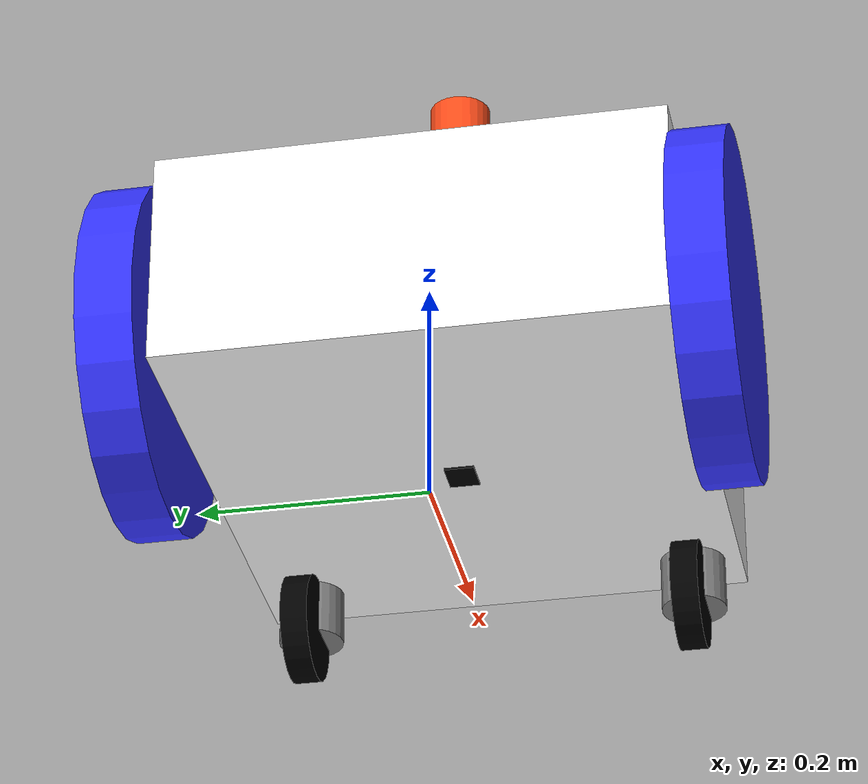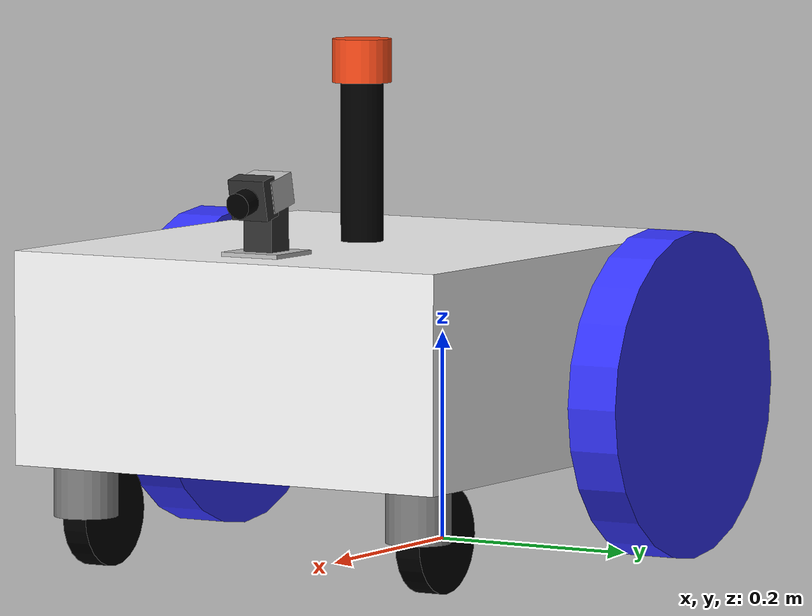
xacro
<?xml version="1.0"?>
<robot xmlns:xacro="http://www.ros.org/wiki/xacro" name="robot">

    <xacro:include filename="robot_core.xacro" />
    <xacro:include filename="gazebo_control.xacro" />
    <xacro:include filename="lidar.xacro" />
    <xacro:include filename="imu.xacro" />
    <xacro:include filename="camera.xacro" />
</robot>

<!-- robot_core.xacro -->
<robot xmlns:xacro="http://www.ros.org/wiki/xacro">

    <xacro:include filename="inertial_macros.xacro"/>

    <!-- COLOR DEFINITIONS -->
    <material name="white">
        <color rgba="1 1 1 1" />
    </material>

    <material name="orange">
        <color rgba="1 0.3 0.1 1"/>
    </material>

    <material name="blue">
        <color rgba="0.2 0.2 1 1"/>
    </material>

    <material name="black">
        <color rgba="0 0 0 1"/>
    </material>

    <material name="grey">
        <color rgba="0.5 0.5 0.5 1"/>
    </material>

    <!-- BASE LINK (Tam truc 2 banh chu dong tren mat dat) -->
    <link name="base_link">
    </link>

    <!-- BASE FOOTPRINT -->
    <joint name="base_footprint_joint" type="fixed">
        <parent link="base_link"/>
        <child link="base_footprint"/>
        <origin xyz="0 0 0" rpy="0 0 0"/>
    </joint>

    <link name="base_footprint">
    </link>

    <!-- CHASSIS LINK (Gam cach dat 0.1m, Than xe Cao 0.2m -> Tam o Z = 0.2m) -->
    <joint name="chassis_joint" type="fixed">
        <parent link="base_link"/>
        <child link="chassis"/>
        <origin xyz="-0.1 0 0"/>
    </joint>

    <link name="chassis">
        <visual>
            <origin xyz="0.25 0 0.2"/>
            <geometry>
                <box size="0.5 0.45 0.2"/>
            </geometry>
            <material name="white"/>
        </visual>
        <collision>
            <origin xyz="0.25 0 0.2"/>
            <geometry>
                <box size="0.5 0.45 0.2"/>
            </geometry>
        </collision>
        <xacro:inertial_box mass="10.0" x="0.5" y="0.45" z="0.2">
            <origin xyz="0.25 0 0.2" rpy="0 0 0"/>
        </xacro:inertial_box>
    </link>

    <gazebo reference="chassis">
        <material>Gazebo/White</material>
    </gazebo>

    <!-- LEFT WHEEL LINK (Ban kinh 0.155m, Do day 0.05m) -->
    <joint name="left_wheel_joint" type="continuous">
        <parent link="base_link"/>
        <child link="left_wheel"/>
        <origin xyz="0 0.25 0.155" rpy="-${pi/2} 0 0" />
        <axis xyz="0 0 1"/>
    </joint>

    <link name="left_wheel">
        <visual>
            <geometry>
                <cylinder radius="0.155" length="0.05"/>
            </geometry>
            <material name="blue"/>
        </visual>
        <collision>
            <geometry>
                <cylinder radius="0.155" length="0.05"/>
            </geometry>
        </collision>
        <xacro:inertial_cylinder mass="1.5" length="0.05" radius="0.155">
            <origin xyz="0 0 0" rpy="0 0 0"/>
        </xacro:inertial_cylinder>
    </link>

    <gazebo reference="left_wheel">
        <material>Gazebo/Blue</material>
    </gazebo>

    <!-- RIGHT WHEEL LINK (Ban kinh 0.155m, Do day 0.05m) -->
    <joint name="right_wheel_joint" type="continuous">
        <parent link="base_link"/>
        <child link="right_wheel"/>
        <origin xyz="0 -0.25 0.155" rpy="${pi/2} 0 0" />
        <axis xyz="0 0 -1"/>
    </joint>

    <link name="right_wheel">
        <visual>
            <geometry>
                <cylinder radius="0.155" length="0.05"/>
            </geometry>
            <material name="blue"/>
        </visual>
        <collision>
            <geometry>
                <cylinder radius="0.155" length="0.05"/>
            </geometry>
        </collision>
        <xacro:inertial_cylinder mass="1.5" length="0.05" radius="0.155">
            <origin xyz="0 0 0" rpy="0 0 0"/>
        </xacro:inertial_cylinder>
    </link>

    <gazebo reference="right_wheel">
        <material>Gazebo/Blue</material>
    </gazebo>

    <!-- ==================== FRONT LEFT SWIVEL CASTER ==================== -->
    <!-- Khop xoay co banh quanh truc Z -->
    <joint name="fl_caster_swivel_joint" type="fixed">
        <parent link="chassis"/>
        <child link="fl_caster_swivel"/>
        <origin xyz="0.45 0.18 0.1" rpy="0 0 0"/>
        <axis xyz="0 0 1"/>
    </joint>

    <link name="fl_caster_swivel">
        <visual>
            <origin xyz="0 0 -0.025" rpy="0 0 0"/>
            <geometry>
                <cylinder radius="0.03" length="0.05"/>
            </geometry>
            <material name="grey"/>
        </visual>
        <collision>
            <origin xyz="0 0 -0.025" rpy="0 0 0"/>
            <geometry>
                <cylinder radius="0.03" length="0.05"/>
            </geometry>
        </collision>
        <xacro:inertial_cylinder mass="0.2" length="0.05" radius="0.03">
            <origin xyz="0 0 -0.025" rpy="0 0 0"/>
        </xacro:inertial_cylinder>
    </link>

    <!-- Khop quay banh xe lan quanh truc Y -->
    <joint name="fl_caster_wheel_joint" type="fixed">
        <parent link="fl_caster_swivel"/>
        <child link="fl_caster_wheel"/>
        <origin xyz="-0.03 0 -0.05" rpy="-${pi/2} 0 0"/>
        <axis xyz="0 0 1"/>
    </joint>

    <link name="fl_caster_wheel">
        <visual>
            <origin xyz="0 0 0" rpy="0 0 0"/>
            <geometry>
                <cylinder radius="0.05" length="0.025"/>
            </geometry>
            <material name="black"/>
        </visual>
        <collision>
            <origin xyz="0 0 0" rpy="0 0 0"/>
            <geometry>
                <cylinder radius="0.05" length="0.025"/>
            </geometry>
        </collision>
        <xacro:inertial_cylinder mass="0.3" length="0.025" radius="0.05">
            <origin xyz="0 0 0" rpy="0 0 0"/>
        </xacro:inertial_cylinder>
    </link>

    <gazebo reference="fl_caster_swivel">
        <material>Gazebo/Grey</material>
    </gazebo>
    <gazebo reference="fl_caster_wheel">
        <material>Gazebo/Black</material>
        <mu1 value="0.1"/>
        <mu2 value="0.1"/>
    </gazebo>

    <!-- ==================== FRONT RIGHT SWIVEL CASTER ==================== -->
    <!-- Khop xoay co banh quanh truc Z -->
    <joint name="fr_caster_swivel_joint" type="fixed">
        <parent link="chassis"/>
        <child link="fr_caster_swivel"/>
        <origin xyz="0.45 -0.18 0.1" rpy="0 0 0"/>
        <axis xyz="0 0 1"/>
    </joint>

    <link name="fr_caster_swivel">
        <visual>
            <origin xyz="0 0 -0.025" rpy="0 0 0"/>
            <geometry>
                <cylinder radius="0.03" length="0.05"/>
            </geometry>
            <material name="grey"/>
        </visual>
        <collision>
            <origin xyz="0 0 -0.025" rpy="0 0 0"/>
            <geometry>
                <cylinder radius="0.03" length="0.05"/>
            </geometry>
        </collision>
        <xacro:inertial_cylinder mass="0.2" length="0.05" radius="0.03">
            <origin xyz="0 0 -0.025" rpy="0 0 0"/>
        </xacro:inertial_cylinder>
    </link>

    <!-- Khop quay banh xe lan quanh truc Y -->
    <joint name="fr_caster_wheel_joint" type="fixed">
        <parent link="fr_caster_swivel"/>
        <child link="fr_caster_wheel"/>
        <origin xyz="-0.03 0 -0.05" rpy="-${pi/2} 0 0"/>
        <axis xyz="0 0 1"/>
    </joint>

    <link name="fr_caster_wheel">
        <visual>
            <origin xyz="0 0 0" rpy="0 0 0"/>
            <geometry>
                <cylinder radius="0.05" length="0.025"/>
            </geometry>
            <material name="black"/>
        </visual>
        <collision>
            <origin xyz="0 0 0" rpy="0 0 0"/>
            <geometry>
                <cylinder radius="0.05" length="0.025"/>
            </geometry>
        </collision>
        <xacro:inertial_cylinder mass="0.3" length="0.025" radius="0.05">
            <origin xyz="0 0 0" rpy="0 0 0"/>
        </xacro:inertial_cylinder>
    </link>

    <gazebo reference="fr_caster_swivel">
        <material>Gazebo/Grey</material>
    </gazebo>
    <gazebo reference="fr_caster_wheel">
        <material>Gazebo/Black</material>
        <mu1 value="0.1"/>
        <mu2 value="0.1"/>
    </gazebo>

</robot>

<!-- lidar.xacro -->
<robot xmlns:xacro="http://www.ros.org/wiki/xacro">

    <!-- KHỚP NỐI TRỤ ĐỠ THÁP (Cao 0.15m đặt trên nóc thân xe) -->
    <!-- Nóc xe ở Z = 0.3m (gầm 0.1m + thân 0.2m), đặt trụ cao 0.15m lên nóc -->
    <joint name="laser_tower_joint" type="fixed">
        <parent link="chassis"/>
        <child link="laser_tower"/>
        <origin xyz="0.25 0 0.3" rpy="0 0 0"/>
    </joint>

    <link name="laser_tower">
        <visual>
            <origin xyz="0 0 0.075" rpy="0 0 0"/>
            <geometry>
                <cylinder radius="0.02" length="0.15"/>
            </geometry>
            <material name="black"/>
        </visual>
        <collision>
            <origin xyz="0 0 0.075" rpy="0 0 0"/>
            <geometry>
                <cylinder radius="0.02" length="0.15"/>
            </geometry>
        </collision>
        <xacro:inertial_cylinder mass="0.2" length="0.15" radius="0.02">
            <origin xyz="0 0 0.075" rpy="0 0 0"/>
        </xacro:inertial_cylinder>
    </link>

    <gazebo reference="laser_tower">
        <material>Gazebo/Black</material>
    </gazebo>

    <!-- KHỚP NỐI MẮT ĐỌC RPLIDAR C1 (Đặt trên đỉnh trụ tháp) -->
    <joint name="laser_joint" type="fixed">
        <parent link="laser_tower"/>
        <child link="laser_frame"/>
        <origin xyz="0 0 0.15" rpy="0 0 0"/>
    </joint>

    <link name="laser_frame">
        <visual>
            <origin xyz="0 0 0.02" rpy="0 0 0"/>
            <geometry>
                <cylinder radius="0.028" length="0.041"/>
            </geometry>
            <material name="orange"/>
        </visual>
        <collision>
            <origin xyz="0 0 0.02" rpy="0 0 0"/>
            <geometry>
                <cylinder radius="0.028" length="0.041"/>
            </geometry>
        </collision>
        <xacro:inertial_cylinder mass="0.11" length="0.041" radius="0.028">
            <origin xyz="0 0 0.02" rpy="0 0 0"/>
        </xacro:inertial_cylinder>
    </link>

    <gazebo reference="laser_frame">
        <material>Gazebo/Orange</material>

        <sensor name="laser" type="ray">
            <pose> 0 0 0.02 0 0 0 </pose>

            <visualize>true</visualize>
            <update_rate>10</update_rate>
            <ray>
                <scan>
                    <horizontal>
                        <!-- 360 độ / 0.72 độ = 500 mẫu quét -->
                        <samples>500</samples>
                        <resolution>1</resolution>
                        <min_angle>-3.14159265</min_angle>
                        <max_angle>3.14159265</max_angle>
                    </horizontal>
                </scan>
                <range>
                    <!-- Thông số RPLIDAR C1: 0.05m đến 12.0m -->
                    <min>0.05</min>
                    <max>12.0</max>
                    <resolution>0.013</resolution>
                </range>
            </ray>
            <plugin name="laser_controller" filename="libgazebo_ros_ray_sensor.so">
                <ros>
                    <argument>~/out:=scan</argument>
                </ros>
                <output_type>sensor_msgs/LaserScan</output_type>
                <frame_name>laser_frame</frame_name>
            </plugin>
        </sensor>
    </gazebo>

</robot>

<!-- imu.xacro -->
<robot xmlns:xacro="http://www.ros.org/wiki/xacro">

    <!-- KHỚP NỐI VÀ VỊ TRÍ IMU BNO055 (Đặt ở trọng tâm trên thân xe) -->
    <joint name="imu_joint" type="fixed">
        <parent link="chassis"/>
        <child link="imu_link"/>
        <!-- Đặt tại giữa thân xe, hơi nhô lên bề mặt sàn xe một chút -->
        <origin xyz="0.25 0 0.1" rpy="0 0 0"/>
    </joint>

    <link name="imu_link">
        <visual>
            <geometry>
                <!-- Mô phỏng kích thước bo BNO055: 3.2cm x 2.7cm x 0.4cm -->
                <box size="0.032 0.027 0.004"/>
            </geometry>
            <material name="black"/>
        </visual>
        <collision>
            <geometry>
                <box size="0.032 0.027 0.004"/>
            </geometry>
        </collision>
        <xacro:inertial_box mass="0.01" x="0.032" y="0.027" z="0.004">
            <origin xyz="0 0 0" rpy="0 0 0"/>
        </xacro:inertial_box>
    </link>

    <gazebo reference="imu_link">
        <material>Gazebo/Black</material>
        <sensor name="bno055_imu" type="imu">
            <always_on>true</always_on>
            <update_rate>50</update_rate>
            <visualize>false</visualize>
            <imu>
                <angular_velocity>
                    <x>
                        <noise type="gaussian">
                            <mean>0.0</mean>
                            <stddev>0.002</stddev>
                        </noise>
                    </x>
                    <y>
                        <noise type="gaussian">
                            <mean>0.0</mean>
                            <stddev>0.002</stddev>
                        </noise>
                    </y>
                    <z>
                        <noise type="gaussian">
                            <mean>0.0</mean>
                            <stddev>0.002</stddev>
                        </noise>
                    </z>
                </angular_velocity>
                <linear_acceleration>
                    <x>
                        <noise type="gaussian">
                            <mean>0.0</mean>
                            <stddev>0.01</stddev>
                        </noise>
                    </x>
                    <y>
                        <noise type="gaussian">
                            <mean>0.0</mean>
                            <stddev>0.01</stddev>
                        </noise>
                    </y>
                    <z>
                        <noise type="gaussian">
                            <mean>0.0</mean>
                            <stddev>0.01</stddev>
                        </noise>
                    </z>
                </linear_acceleration>
            </imu>
            <plugin name="imu_controller" filename="libgazebo_ros_imu_sensor.so">
                <ros>
                    <argument>~/out:=imu/data</argument>
                </ros>
                <initial_orientation_as_reference>false</initial_orientation_as_reference>
                <frame_name>imu_link</frame_name>
            </plugin>
        </sensor>
    </gazebo>

</robot>

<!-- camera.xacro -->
<robot xmlns:xacro="http://www.ros.org/wiki/xacro">

    <material name="silver">
        <color rgba="0.75 0.75 0.75 1.0"/>
    </material>
    <material name="dark_grey">
        <color rgba="0.2 0.2 0.2 1.0"/>
    </material>

    <!-- 1. CHÂN ĐẾ GIMBAL (Tiếp xúc trực tiếp nóc thùng xe tại Z = 0.30m) -->
    <link name="camera_pan_base">
        <visual>
            <origin xyz="0 0 0.002" rpy="0 0 0"/>
            <geometry>
                <box size="0.06 0.06 0.004"/>
            </geometry>
            <material name="silver"/>
        </visual>
        <collision>
            <origin xyz="0 0 0.002" rpy="0 0 0"/>
            <geometry>
                <box size="0.06 0.06 0.004"/>
            </geometry>
        </collision>
        <xacro:inertial_box mass="0.05" x="0.06" y="0.06" z="0.004">
            <origin xyz="0 0 0.002" rpy="0 0 0"/>
        </xacro:inertial_box>
    </link>

    <joint name="camera_pan_base_joint" type="fixed">
        <parent link="chassis"/>
        <child link="camera_pan_base"/>
        <origin xyz="0.42 0 0.30" rpy="0 0 0"/>
    </joint>
    <gazebo reference="camera_pan_base">
        <material>Gazebo/Grey</material>
    </gazebo>

    <!-- 2. SERVO PAN (Khóa tạm fixed) -->
    <link name="camera_pan_link">
        <visual>
            <origin xyz="0 0 0.02" rpy="0 0 0"/>
            <geometry>
                <box size="0.03 0.03 0.04"/>
            </geometry>
            <material name="dark_grey"/>
        </visual>
        <collision>
            <origin xyz="0 0 0.02" rpy="0 0 0"/>
            <geometry>
                <box size="0.03 0.03 0.04"/>
            </geometry>
        </collision>
        <xacro:inertial_box mass="0.05" x="0.03" y="0.03" z="0.04">
            <origin xyz="0 0 0.02" rpy="0 0 0"/>
        </xacro:inertial_box>
    </link>

    <joint name="camera_pan_joint" type="revolute">
        <parent link="camera_pan_base"/>
        <child link="camera_pan_link"/>
        <origin xyz="0 0 0.004" rpy="0 0 0"/>
        <axis xyz="0 0 1"/>
        <limit lower="-1.5708" upper="1.5708" effort="10.0" velocity="2.0"/>
        <dynamics damping="10.0" friction="10.0"/>
    </joint>
    <gazebo reference="camera_pan_link">
        <material>Gazebo/DarkGrey</material>
    </gazebo>

    <!-- 3. CÙM GÁ TILT (Chúc nhẹ 12 độ = 0.2094 rad để vừa thấy mũi xe vừa thấy luống) -->
    <link name="camera_tilt_link">
        <visual>
            <origin xyz="0 0 0.015" rpy="0 0 0"/>
            <geometry>
                <box size="0.035 0.04 0.03"/>
            </geometry>
            <material name="silver"/>
        </visual>
        <collision>
            <origin xyz="0 0 0.015" rpy="0 0 0"/>
            <geometry>
                <box size="0.035 0.04 0.03"/>
            </geometry>
        </collision>
        <xacro:inertial_box mass="0.05" x="0.035" y="0.04" z="0.03">
            <origin xyz="0 0 0.015" rpy="0 0 0"/>
        </xacro:inertial_box>
    </link>

    <joint name="camera_tilt_joint" type="revolute">
        <parent link="camera_pan_link"/>
        <child link="camera_tilt_link"/>
        <origin xyz="0 0 0.04" rpy="0 0.2094 0"/>
        <axis xyz="0 1 0"/>
        <limit lower="-0.7854" upper="0.7854" effort="10.0" velocity="2.0"/>
        <dynamics damping="10.0" friction="10.0"/>
    </joint>
    <gazebo reference="camera_tilt_link">
        <material>Gazebo/Grey</material>
    </gazebo>

    <!-- 4. BO MẠCH CAMERA & LENS (IMX296) -->
    <link name="camera_link">
        <visual>
            <origin xyz="0 0 0" rpy="0 0 0"/>
            <geometry>
                <box size="0.0198 0.038 0.038"/>
            </geometry>
            <material name="dark_grey"/>
        </visual>
        <visual>
            <origin xyz="0.015 0 0" rpy="0 1.5708 0"/>
            <geometry>
                <cylinder radius="0.012" length="0.025"/>
            </geometry>
            <material name="black"/>
        </visual>
        <collision>
            <origin xyz="0.01 0 0" rpy="0 0 0"/>
            <geometry>
                <box size="0.03 0.038 0.038"/>
            </geometry>
        </collision>
        <xacro:inertial_box mass="0.034" x="0.038" y="0.038" z="0.0198">
            <origin xyz="0.01 0 0" rpy="0 0 0"/>
        </xacro:inertial_box>
    </link>

    <joint name="camera_joint" type="fixed">
        <parent link="camera_tilt_link"/>
        <child link="camera_link"/>
        <origin xyz="0.02 0 0.015" rpy="0 0 0"/>
    </joint>
    <gazebo reference="camera_link">
        <material>Gazebo/DarkGrey</material>
    </gazebo>

    <!-- 5. KHUNG QUANG HỌC CHUẨN ROS CHO GAZEBO SENSOR -->
    <joint name="camera_optical_joint" type="fixed">
        <parent link="camera_link"/>
        <child link="camera_link_optical"/>
        <origin xyz="0 0 0" rpy="${-pi/2} 0 ${-pi/2}"/>
    </joint>

    <link name="camera_link_optical"></link>

    <gazebo reference="camera_link">
        <sensor name="camera" type="camera">
            <pose>0 0 0 0 0 0</pose>
            <visualize>true</visualize>
            <update_rate>30</update_rate>
            <camera>
                <horizontal_fov>1.089</horizontal_fov>
                <image>
                    <width>1456</width>
                    <height>1088</height>
                    <format>R8G8B8</format>
                </image>
                <clip>
                    <near>0.05</near>
                    <far>15.0</far>
                </clip>
            </camera>
            <plugin name="camera_controller" filename="libgazebo_ros_camera.so">
                <frame_name>camera_link_optical</frame_name>
            </plugin>
        </sensor>
    </gazebo>

</robot>
